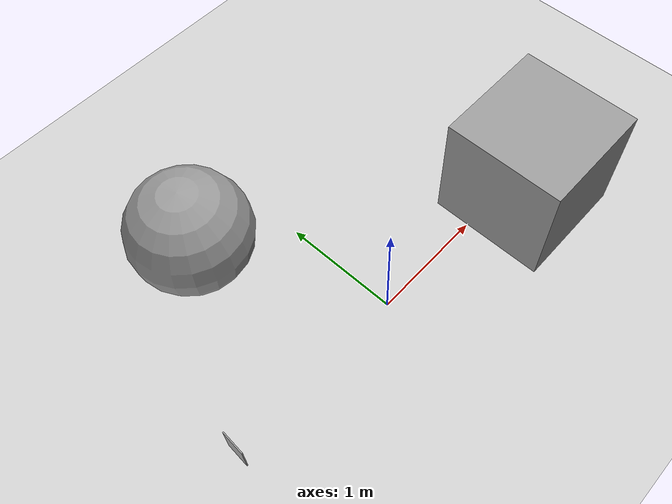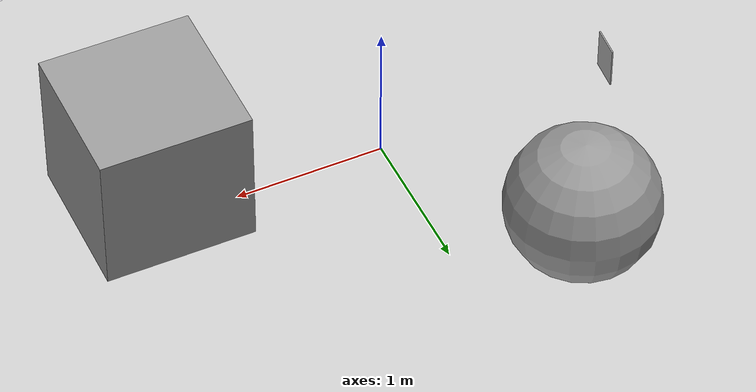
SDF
<sdf version="1.7">
 <world name="default">
  <light name="sun" type="directional">
   <pose>0 0 10 0 -0 0</pose>
   <diffuse>0.8 0.8 0.8 1</diffuse>
   <specular>0.2 0.2 0.2 1</specular>
   <attenuation>
    <range>1000</range>
    <constant>0.9</constant>
    <linear>0.01</linear>
    <quadratic>0.001</quadratic>
   </attenuation>
   <direction>-0.5 0.1 -0.9</direction>
   <spot><inner_angle>0</inner_angle><outer_angle>0</outer_angle><falloff>0</falloff></spot>
  </light>
  <model name="ground_plane">
   <static>1</static>
   <link name="link">
    <collision name="collision">
     <geometry><plane><normal>0 0 1</normal><size>100 100</size></plane></geometry>
     <surface><friction><ode><mu>100</mu><mu2>50</mu2></ode></friction></surface>
    </collision>
    <visual name="visual">
     <cast_shadows>0</cast_shadows>
     <geometry><plane><normal>0 0 1</normal><size>100 100</size></plane></geometry>
     <material>
      <script><uri>file://media/materials/scripts/gazebo.material</uri><name>Gazebo/Grey</name></script>
     </material>
    </visual>
   </link>
  </model>
  <gravity>0 0 -9.8</gravity>
  <magnetic_field>6e-06 2.3e-05 -4.2e-05</magnetic_field>
  <atmosphere type="adiabatic"/>
  <physics type="ode">
   <max_step_size>0.001</max_step_size>
   <real_time_factor>1</real_time_factor>
   <real_time_update_rate>1000</real_time_update_rate>
  </physics>
  <scene><ambient>0.4 0.4 0.4 1</ambient><background>0.7 0.7 0.7 1</background><shadows>1</shadows></scene>
  <spherical_coordinates>
   <surface_model>EARTH_WGS84</surface_model>
   <latitude_deg>0</latitude_deg>
   <longitude_deg>0</longitude_deg>
   <elevation>0</elevation>
   <heading_deg>0</heading_deg>
  </spherical_coordinates>
  <model name="unit_box">
   <pose>1.51272 -0.181418 0.499995 0 1e-05 0</pose>
   <link name="link">
    <inertial>
     <mass>1</mass>
     <inertia>
      <ixx>0.166667</ixx>
      <ixy>0</ixy>
      <ixz>0</ixz>
      <iyy>0.166667</iyy>
      <iyz>0</iyz>
      <izz>0.166667</izz>
     </inertia>
    </inertial>
    <collision name="collision"><geometry><box><size>1 1 1</size></box></geometry></collision>
    <visual name="visual">
     <geometry><box><size>1 1 1</size></box></geometry>
     <material>
      <script><name>Gazebo/Grey</name><uri>file://media/materials/scripts/gazebo.material</uri></script>
     </material>
    </visual>
   </link>
  </model>
  <model name="unit_sphere">
   <pose>-0.725833 1.36206 0.5 0 -0 0</pose>
   <link name="link">
    <inertial>
     <mass>1</mass>
     <inertia><ixx>0.1</ixx><ixy>0</ixy><ixz>0</ixz><iyy>0.1</iyy><iyz>0</iyz><izz>0.1</izz></inertia>
    </inertial>
    <collision name="collision"><geometry><sphere><radius>0.5</radius></sphere></geometry></collision>
    <visual name="visual">
     <geometry><sphere><radius>0.5</radius></sphere></geometry>
     <material>
      <script><name>Gazebo/Grey</name><uri>file://media/materials/scripts/gazebo.material</uri></script>
     </material>
    </visual>
   </link>
  </model>
  <include><uri>model://ar_tags</uri><static>false</static><pose>-1.6 0 0 0 0 1.5</pose></include>
 </world>
</sdf>

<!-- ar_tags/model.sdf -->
<sdf version='1.7'>
  <model name='ar_tags'>
    <link name='link_0'>
      <inertial>
        <mass>1</mass>
        <inertia>
          <ixx>0.166667</ixx>
          <ixy>0</ixy>
          <ixz>0</ixz>
          <iyy>0.166667</iyy>
          <iyz>0</iyz>
          <izz>0.166667</izz>
        </inertia>
      </inertial>
      <pose>-4e-06 -0 0 0 -0 0</pose>
      <visual name='visual'>
        <pose>0 0 0 0 -0 0</pose>
        <geometry>
          <mesh>
            <uri>ar_tags.dae</uri>
            <scale>1 1 1</scale>
          </mesh>
        </geometry>
        <transparency>0</transparency>
        <cast_shadows>1</cast_shadows>
      </visual>
      <collision name='collision'>
        <laser_retro>0</laser_retro>
        <max_contacts>10</max_contacts>
        <pose>0 0 0 0 -0 0</pose>
        <geometry>
          <mesh>
            <uri>ar_tags.dae</uri>
            <scale>1 1 1</scale>
          </mesh>
        </geometry>
        <surface>
          <friction>
            <ode>
              <mu>1</mu>
              <mu2>1</mu2>
              <fdir1>0 0 0</fdir1>
              <slip1>0</slip1>
              <slip2>0</slip2>
            </ode>
            <torsional>
              <coefficient>1</coefficient>
              <patch_radius>0</patch_radius>
              <surface_radius>0</surface_radius>
              <use_patch_radius>1</use_patch_radius>
              <ode>
                <slip>0</slip>
              </ode>
            </torsional>
          </friction>
          <bounce>
            <restitution_coefficient>0</restitution_coefficient>
            <threshold>1e+06</threshold>
          </bounce>
          <contact>
            <collide_without_contact>0</collide_without_contact>
            <collide_without_contact_bitmask>1</collide_without_contact_bitmask>
            <collide_bitmask>1</collide_bitmask>
            <ode>
              <soft_cfm>0</soft_cfm>
              <soft_erp>0.2</soft_erp>
              <kp>1e+13</kp>
              <kd>1</kd>
              <max_vel>0.01</max_vel>
              <min_depth>0</min_depth>
            </ode>
            <bullet>
              <split_impulse>1</split_impulse>
              <split_impulse_penetration_threshold>-0.01</split_impulse_penetration_threshold>
              <soft_cfm>0</soft_cfm>
              <soft_erp>0.2</soft_erp>
              <kp>1e+13</kp>
              <kd>1</kd>
            </bullet>
          </contact>
        </surface>
      </collision>
    </link>
    <static>0</static>
    <allow_auto_disable>1</allow_auto_disable>
  </model>
</sdf>
